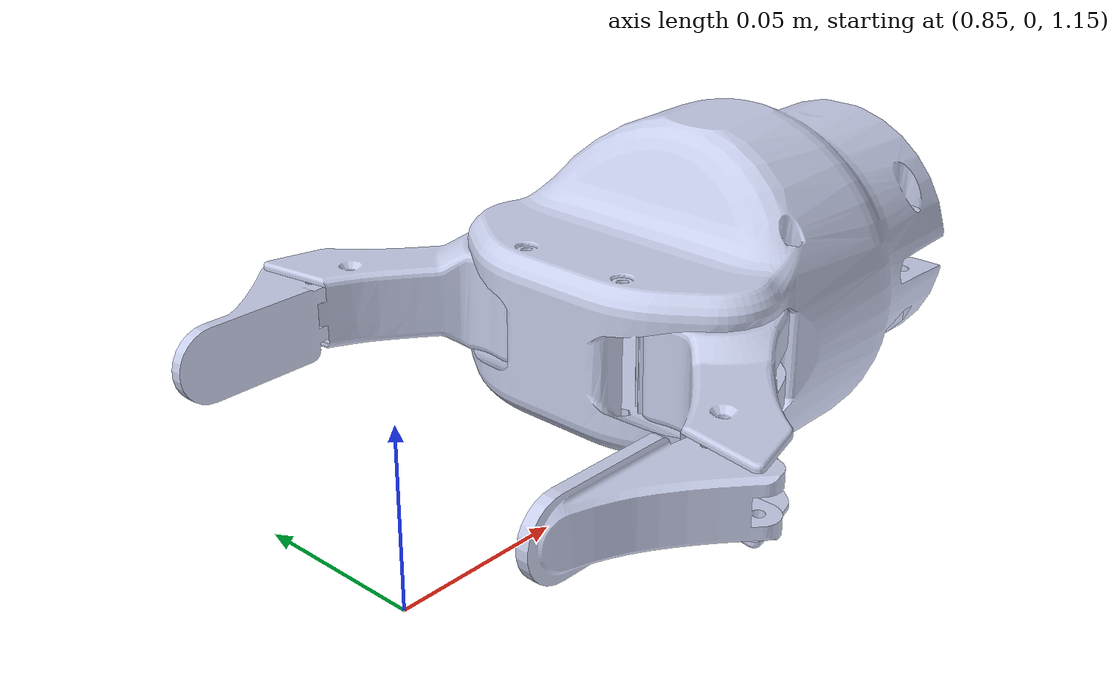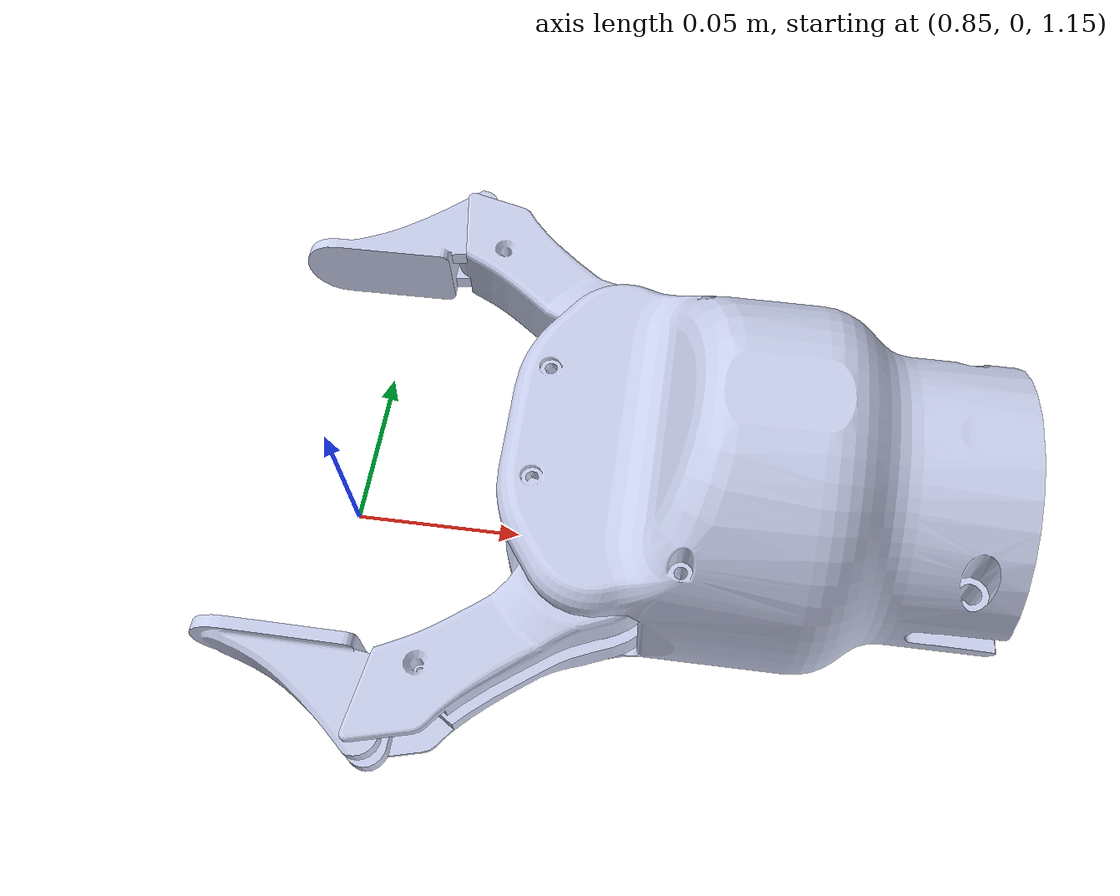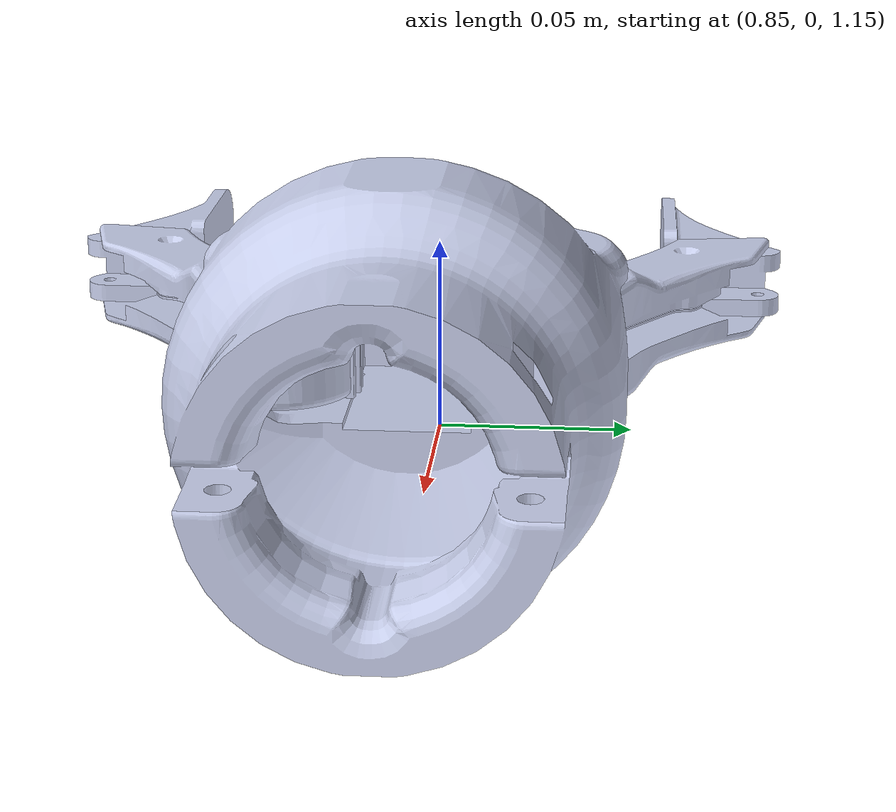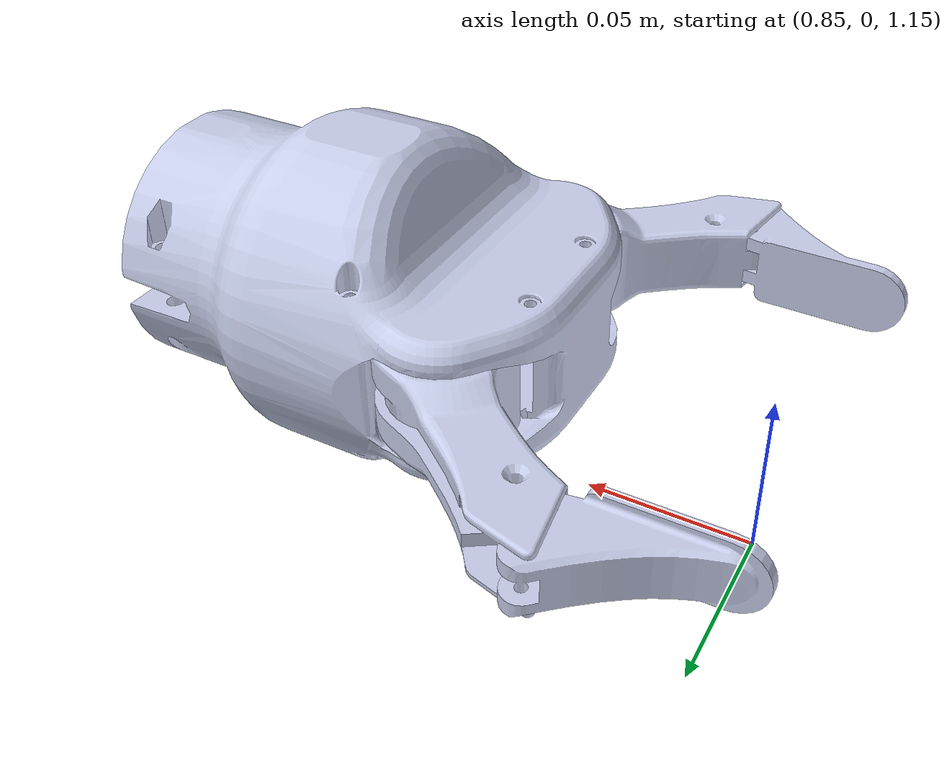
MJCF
<mujoco model="blue_wrist">
    <compiler angle="radian" meshdir="../../robot/meshes_blue_v1/" strippath="false"/>
    <option gravity="0 0 0"/>
    <asset>
        <mesh name="wrist_roll_link" file="hand_base_link.STL" />
        <mesh name="rightfingerlimb_link" file="finger_limb_link.STL"/>
        <mesh name="leftfingerlimb_link" file="finger_limb_link.STL"/>
        <mesh name="rightfingertip_link" file="finger_tip_link.STL"/>
        <mesh name="leftfingertip_link" file="finger_tip_link.STL"/>
        <texture builtin="flat" height="32" name="plastic" type="2d" width="32"/>
        <texture builtin="flat" height="32" name="metal" type="2d" width="32"/>
        <material name="Plastic" shininess="0.3" specular="0.3" texture="plastic"/>
    </asset>
    <worldbody>
            <body name="robotwrist_rolllink" pos="1.0 0 1.2" euler="0 0 0">
                <camera fovy="60" mode="fixed" name="robot_camera1" pos="-0.05 -0.05 0.05" euler="1.57 1.57 0"/>
                <camera fovy="60" mode="fixed" name="robot_camera2" pos="-0.05 0.05 0.05" euler="1.57 1.57 0"/>
                <inertial pos="-0.0641638075944594 2.70691865020822e-05 0.00526385736219506" quat="0.999999 0.000484212 -0.00134643 -0.000743041" mass="0.657109755986862" fullinertia="0.0057866591250737 0.00530223654324281 0.00342399181200673 3.71515699629511e-07 -6.32890111626103e-05 8.9999884666805e-07" />
                <geom name="link" type="mesh" rgba="0.792157 0.819608 0.933333 1" mesh="wrist_roll_link" contype="16" conaffinity="7" euler="0 1.57 0" />
                <joint name="wrist_x_slide_joint" type="slide" pos="-0.0641638075944594 2.70691865020822e-05 0.00526385736219506" axis="1 0 0" limited="true" range="-3.0 3.0" />
                <joint name="wrist_y_slide_joint" type="slide" pos="-0.0641638075944594 2.70691865020822e-05 0.00526385736219506" axis="0 1 0" limited="true" range="-3.0 3.0" />
                <joint name="wrist_z_slide_joint" type="slide" pos="-0.0641638075944594 2.70691865020822e-05 0.00526385736219506" axis="0 0 1" limited="true" range="-3.0 3.0" />
                <joint name="wrist_z_hinge_joint" type="hinge" pos="-0.0641638075944594 2.70691865020822e-05 0.00526385736219506" axis="0 0 1" limited="true" range="-1.57 1.57" />
                <joint name="wrist_y_hinge_joint" type="hinge" pos="-0.0641638075944594 2.70691865020822e-05 0.00526385736219506" axis="0 1 0" limited="true" range="-1.57 1.57" />
                <joint name="wrist_x_hinge_joint" type="hinge" pos="-0.0641638075944594 2.70691865020822e-05 0.00526385736219506" axis="1 0 0" limited="true" range="0 3.13" />
                <body name="gripper" pos="0 0 0" euler="0 1.57 0" >
                    <body name="robotfinger_actuator_inertia" pos="0 0 -0.10" euler="0 0 0" >
                        <inertial pos="-0.052367118189184 2.51271935254316e-05 -7.00549073506807e-05" quat="1 0 0 0" mass="0.0047109755986862" fullinertia="0.000916887873826385 0.000877268801166351 0.000293333065172452 -6.04547948818479e-08 0.6796133363069e-06 0.64172907801915e-07"/>
                        <joint name="robotfinger_actuator_joint" pos="-0.052367118189184 2.51271935254316e-05 -7.00549073506807e-05" axis="1 0 0" limited="true" range="0 1.05" />
                    </body>
                    <body name="robotfingerlimb_rightlink" pos="0.000 0.030703 -0.071979" quat="0.63 -0.321 -0.63 0.321">
                        <inertial pos="0.00046733152633803 0.0122666320844707 1.16452530510985E-07" quat="1.0 0 0 0" mass="0.0384620979765985" fullinertia="1.93716279065148E-05 5.23390911087335E-06 1.92560542157392E-05 -1.74835869619804E-06 3.21020594362941E-11 -5.04535602261134E-11"/>
                        <geom name="fingerright1" type="mesh" material="Plastic" rgba="0.792156862745098 0.819607843137255 0.933333333333333 1" mesh="rightfingerlimb_link"  contype="16" conaffinity="7" />
                        <joint name="right_fingerlimb_joint" pos="0 0 0" axis="0 0 1" limited="true" range="0 1.05" />
                        <body name="robotfingertip_rightlink" pos="0 0.06 0" quat="0.222 0.222 -0.672 -0.672">
                            <inertial pos="0.000428096363398578 -6.3962924111774E-08 0.0162809660053768" quat="1.0 0 0 0" mass="0.0096424502794395" fullinertia="1.76146900164229E-06 1.95368501856251E-06 6.78506827465793E-07 -1.63725174281941E-11 -5.09403577370148E-07 -2.7403586363238E-12"/>
                            <geom name="fingerright2" type="mesh" material="Plastic" rgba="0.792156862745098 0.819607843137255 0.933333333333333 1" mesh="rightfingertip_link"  contype="1" conaffinity="1" />
                            <joint name="right_fingertip_joint" pos="0 0 0" axis="0 1 0" limited="true" range="-1.05 0" />
                        </body>
                    </body>
                    <body name="robotfingerlimb_leftlink" pos="0.000 -0.030703 -0.071979" quat="0.321 -0.63 0.321 -0.63">
                        <inertial pos="0.00046733152633803 0.0122666320844707 1.16452530510985E-07" quat="1.0 0 0 0" mass="0.0384620979765985" fullinertia="1.93716279065148E-05 5.23390911087335E-06 1.92560542157392E-05 -1.74835869619804E-06 3.21020594362941E-11 -5.04535602261134E-11"/>
                        <geom name="fingerleft1" type="mesh" material="Plastic" rgba="0.792156862745098 0.819607843137255 0.933333333333333 1" mesh="leftfingerlimb_link"  contype="16" conaffinity="7" />
                        <joint name="left_fingerlimb_joint" pos="0 0 0" axis="0 0 1" limited="true" range="0 1.05" />
                        <body name="robotfingertip_leftlink" pos="0 0.06 0" quat="0.222 0.222 -0.672 -0.672">
                            <inertial pos="0.000428096363398578 -6.3962924111774E-08 0.0162809660053768" quat="1.0 0 0 0" mass="0.0096424502794395" fullinertia="1.76146900164229E-06 1.95368501856251E-06 6.78506827465793E-07 -1.63725174281941E-11 -5.09403577370148E-07 -2.7403586363238E-12"/>
                            <geom name="fingerleft2" type="mesh" material="Plastic" rgba="0.792156862745098 0.819607843137255 0.933333333333333 1" mesh="leftfingertip_link"  contype="1" conaffinity="1" />
                            <joint name="left_fingertip_joint" pos="0 0 0" axis="0 1 0" limited="true" range="-1.05 0" />
                        </body>
                    </body>
                </body>
            </body>

    </worldbody>
    <actuator>
        <motor ctrllimited="true" ctrlrange="-1.0 1.0" gear="2.0" joint="wrist_x_slide_joint" />
        <motor ctrllimited="true" ctrlrange="-1.0 1.0" gear="2.0" joint="wrist_y_slide_joint" />
        <motor ctrllimited="true" ctrlrange="-1.0 1.0" gear="2.0" joint="wrist_z_slide_joint" />
        <motor ctrllimited="true" ctrlrange="-1.0 1.0" gear="2.0" joint="wrist_z_hinge_joint" />
        <motor ctrllimited="true" ctrlrange="-1.0 1.0" gear="2.0" joint="wrist_y_hinge_joint" />
        <motor ctrllimited="true" ctrlrange="-1.0 1.0" gear="2.0" joint="wrist_x_hinge_joint" />
        <position ctrllimited="true" ctrlrange="0 1.05" gear="1.0" joint="robotfinger_actuator_joint" />
        <position ctrllimited="true" kp="1.0" ctrlrange="0 1.4" joint="right_fingerlimb_joint" />
        <position ctrllimited="true" kp="1.0" ctrlrange="-1.4 0" joint="right_fingertip_joint" />
        <position ctrllimited="true" kp="1.0" ctrlrange="0 1.4" joint="left_fingerlimb_joint" />
        <position ctrllimited="true" kp="1.0" ctrlrange="-1.4 0" joint="left_fingertip_joint" />
	</actuator>
</mujoco>
